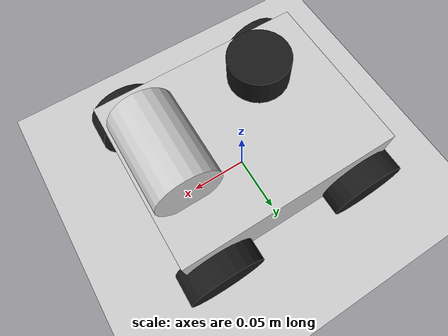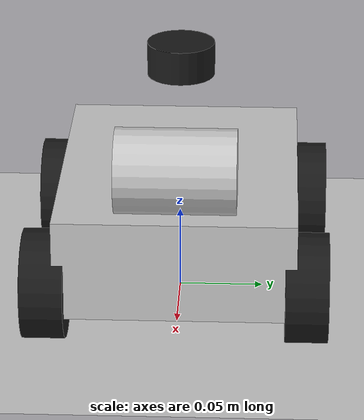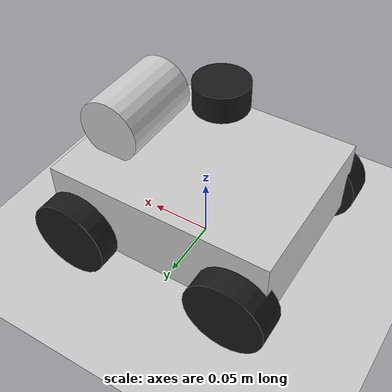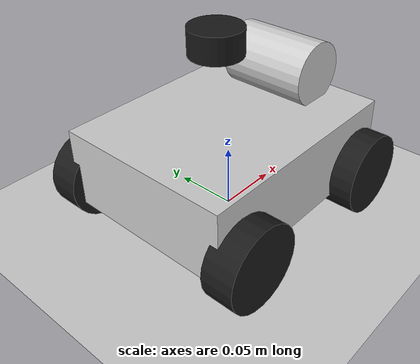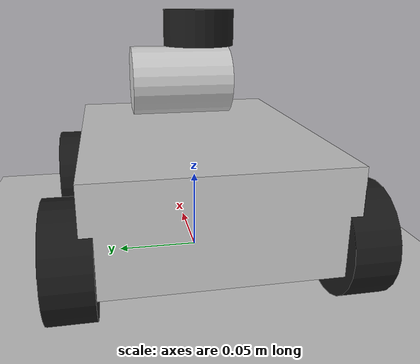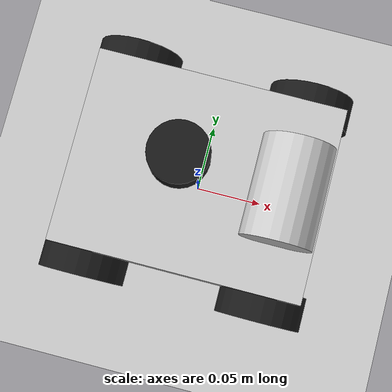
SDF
<?xml version="1.0" ?>
<sdf version="1.6">
  <world name="pioneer3_world">
    <physics name="1ms" type="ignored">
      <max_step_size>0.004</max_step_size>
      <real_time_factor>1.0</real_time_factor>
    </physics>
    <plugin
      filename="gz-sim-physics-system"
      name="gz::sim::systems::Physics">
    </plugin>
    <plugin
      filename="gz-sim-user-commands-system"
      name="gz::sim::systems::UserCommands">
    </plugin>
    <plugin
      filename="gz-sim-scene-broadcaster-system"
      name="gz::sim::systems::SceneBroadcaster">
    </plugin>
    <plugin
      filename="gz-sim-contact-system"
      name="gz::sim::systems::Contact">
    </plugin>

    <light type="directional" name="sun">
      <cast_shadows>true</cast_shadows>
      <pose>0 0 10 0 0 0</pose>
      <diffuse>0.8 0.8 0.8 1</diffuse>
      <specular>0.2 0.2 0.2 1</specular>
      <attenuation>
        <range>1000</range>
        <constant>0.9</constant>
        <linear>0.01</linear>
        <quadratic>0.001</quadratic>
      </attenuation>
      <direction>-0.5 0.1 -0.9</direction>
    </light>

    <model name="ground_plane">
      <static>true</static>
      <link name="link">
        <collision name="collision">
          <geometry>
            <plane>
              <normal>0 0 1</normal>
              <size>100 100</size>
            </plane>
          </geometry>
        </collision>
        <visual name="visual">
          <geometry>
            <plane>
              <normal>0 0 1</normal>
              <size>100 100</size>
            </plane>
          </geometry>
          <material>
            <ambient>0.8 0.8 0.8 1</ambient>
            <diffuse>0.8 0.8 0.8 1</diffuse>
            <specular>0.8 0.8 0.8 1</specular>
          </material>
        </visual>
      </link>
    </model>

    <include>
      <uri>mentorpi.sdf</uri>
      <pose>0 0 0 0 0 0</pose>
    </include>

  </world>
</sdf>

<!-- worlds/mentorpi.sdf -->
<sdf version='1.11'>
  <model name='mentorpi'>
    <link name='base_footprint'>
      <inertial>
        <pose>0.0040700634005763686 0 0.06836528530259367 0 0 0</pose>
        <mass>1.7350000000000001</mass>
        <inertia>
          <ixx>0.01103253207617378</ixx>
          <ixy>0</ixy>
          <ixz>-0.0001838035952386166</ixz>
          <iyy>0.0113644695414268</iyy>
          <iyz>0</iyz>
          <izz>0.020727897465253029</izz>
        </inertia>
      </inertial>
      <collision name='base_footprint_fixed_joint_lump__base_link_collision'>
        <pose>0 0 0.070407999999999998 0 0 0</pose>
        <geometry>
          <box>
            <size>0.17999999999999999 0.14000000000000001 0.059999999999999998</size>
          </box>
        </geometry>
        <surface>
          <contact>
            <ode />
          </contact>
          <friction>
            <ode />
          </friction>
        </surface>
      </collision>
      <collision name='base_footprint_fixed_joint_lump__camera_link_collision_1'>
        <pose>0.061376 0 0.101562 0 0 0</pose>
        <geometry>
          <box>
            <size>0.029999999999999999 0.080000000000000002 0.025000000000000001</size>
          </box>
        </geometry>
        <surface>
          <contact>
            <ode />
          </contact>
          <friction>
            <ode />
          </friction>
        </surface>
      </collision>
      <collision name='base_footprint_fixed_joint_lump__laser_collision_2'>
        <pose>-0.012241999999999999 -0.017999999999999999 0.14290900000000001 0 0 0</pose>
        <geometry>
          <cylinder>
            <length>0.040000000000000001</length>
            <radius>0.035000000000000003</radius>
          </cylinder>
        </geometry>
        <surface>
          <contact>
            <ode />
          </contact>
          <friction>
            <ode />
          </friction>
        </surface>
      </collision>
      <visual name='base_footprint_fixed_joint_lump__base_link_visual'>
        <pose>0 0 0.050408000000000001 0 0 0</pose>
        <geometry>
          <box>
            <size>0.18 0.14 0.06</size>
          </box>
        </geometry>
        <material>
          <ambient>0.8 0.8 0.8 1</ambient>
          <diffuse>0.8 0.8 0.8 1</diffuse>
        </material>
      </visual>
      <visual name='base_footprint_fixed_joint_lump__camera_link_visual_1'>
        <pose>0.061376 0 0.101562 1.5707963267948959 0 0</pose>
        <geometry>
          <cylinder>
            <length>0.07</length>
            <radius>0.025</radius>
          </cylinder>
        </geometry>
        <material>
          <ambient>0.8 0.8 0.8 1</ambient>
          <diffuse>0.8 0.8 0.8 1</diffuse>
        </material>
      </visual>
      <visual name='base_footprint_fixed_joint_lump__laser_visual_2'>
        <pose>-0.012241999999999999 0 0.14290900000000001 0 0 0</pose>
        <geometry>
          <cylinder>
            <length>0.02</length>
            <radius>0.02</radius>
          </cylinder>
        </geometry>
        <material>
          <ambient>0.1 0.1 0.1 1</ambient>
        </material>
      </visual>

      <sensor name='imu_sensor' type='imu'>
        <topic>imu/data</topic>
        <update_rate>50</update_rate>
        <always_on>true</always_on>
        <pose>0 0 0.05 0 0 0</pose>
      </sensor>

      <sensor name='camera' type='camera'>
        <topic>camera</topic>
        <update_rate>10</update_rate>
        <always_on>true</always_on>
        <visualize>true</visualize>
        <camera>
          <optical_frame_id>camera_depth_link</optical_frame_id>
          <horizontal_fov>1.5</horizontal_fov>
          <image>
            <width>320</width>
            <height>240</height>
            <format>R8G8B8</format>
          </image>
          <clip>
            <near>0.02</near>
            <far>100</far>
          </clip>
        </camera>
        <pose>0.10 0 0.12 0 0 0</pose>
      </sensor>

      <sensor name='gpu_lidar' type='gpu_lidar'>
        <topic>scan</topic>
        <update_rate>10</update_rate>
        <always_on>true</always_on>
        <visualize>false</visualize>
        <lidar>
          <scan>
            <horizontal>
              <samples>360</samples>
              <resolution>1</resolution>
              <min_angle>0.0</min_angle>
              <max_angle>6.28318</max_angle>
            </horizontal>
          </scan>
          <range>
            <min>0.08</min>
            <max>12</max>
            <resolution>0.01</resolution>
          </range>
        </lidar>
        <pose>-0.012 0 0.143 0 0 0</pose>
        <gz_frame_id>laser</gz_frame_id>
      </sensor>
    </link>
    <joint name='front_left_wheel_joint' type='revolute'>
      <pose relative_to='base_footprint'>0.067000000000000004 0.075910000000000005
        0.032000000000000001 0 0 0</pose>
      <parent>base_footprint</parent>
      <child>front_left_wheel_link</child>
      <axis>
        <xyz>0 1 0</xyz>
        <limit>
          <lower>-inf</lower>
          <upper>inf</upper>
        </limit>
        <dynamics>
          <spring_reference>0</spring_reference>
          <spring_stiffness>0</spring_stiffness>
        </dynamics>
      </axis>
    </joint>
    <link name='front_left_wheel_link'>
      <pose relative_to='front_left_wheel_joint'>0 0 0 0 0 0</pose>
      <inertial>
        <pose>0 0 0 0 0 0</pose>
        <mass>0.10000000000000001</mass>
        <inertia>
          <ixx>4.0960000000000008e-05</ixx>
          <ixy>0</ixy>
          <ixz>0</ixz>
          <iyy>4.0960000000000008e-05</iyy>
          <iyz>0</iyz>
          <izz>4.0960000000000008e-05</izz>
        </inertia>
      </inertial>
      <collision name='front_left_wheel_link_collision'>
        <pose>0 0 0 1.5707963267948959 0 0</pose>
        <geometry>
          <cylinder>
            <length>0.025000000000000001</length>
            <radius>0.032000000000000001</radius>
          </cylinder>
        </geometry>
        <surface>
          <friction>
            <ode>
              <mu>1.5</mu>
              <mu2>0.69999999999999996</mu2>
              <fdir1 gz:expressed_in='base_footprint'>1 -1 0</fdir1>
              <kp>200000.0</kp>
              <kd>5000.0</kd>
            </ode>
          </friction>
          <contact>
            <ode />
          </contact>
        </surface>
      </collision>
      <visual name='front_left_wheel_link_visual'>
        <pose>0 0 0 1.5707963267948959 0 0</pose>
        <geometry>
          <cylinder>
            <length>0.025</length>
            <radius>0.032</radius>
          </cylinder>
        </geometry>
        <material>
          <ambient>0.1 0.1 0.1 1</ambient>
        </material>
      </visual>
    </link>
    <joint name='front_right_wheel_joint' type='revolute'>
      <pose relative_to='base_footprint'>0.067000000000000004 -0.075910000000000005
        0.032000000000000001 0 0 0</pose>
      <parent>base_footprint</parent>
      <child>front_right_wheel_link</child>
      <axis>
        <xyz>0 1 0</xyz>
        <limit>
          <lower>-inf</lower>
          <upper>inf</upper>
        </limit>
        <dynamics>
          <spring_reference>0</spring_reference>
          <spring_stiffness>0</spring_stiffness>
        </dynamics>
      </axis>
    </joint>
    <link name='front_right_wheel_link'>
      <pose relative_to='front_right_wheel_joint'>0 0 0 0 0 0</pose>
      <inertial>
        <pose>0 0 0 0 0 0</pose>
        <mass>0.10000000000000001</mass>
        <inertia>
          <ixx>4.0960000000000008e-05</ixx>
          <ixy>0</ixy>
          <ixz>0</ixz>
          <iyy>4.0960000000000008e-05</iyy>
          <iyz>0</iyz>
          <izz>4.0960000000000008e-05</izz>
        </inertia>
      </inertial>
      <collision name='front_right_wheel_link_collision'>
        <pose>0 0 0 1.5707963267948959 0 0</pose>
        <geometry>
          <cylinder>
            <length>0.025000000000000001</length>
            <radius>0.032000000000000001</radius>
          </cylinder>
        </geometry>
        <surface>
          <friction>
            <ode>
              <mu>1.5</mu>
              <mu2>0.69999999999999996</mu2>
              <fdir1 gz:expressed_in='base_footprint'>1 1 0</fdir1>
              <kp>200000.0</kp>
              <kd>5000.0</kd>
            </ode>
          </friction>
          <contact>
            <ode />
          </contact>
        </surface>
      </collision>
      <visual name='front_right_wheel_link_visual'>
        <pose>0 0 0 1.5707963267948959 0 0</pose>
        <geometry>
          <cylinder>
            <length>0.025</length>
            <radius>0.032</radius>
          </cylinder>
        </geometry>
        <material>
          <ambient>0.1 0.1 0.1 1</ambient>
        </material>
      </visual>
    </link>
    <joint name='rear_left_wheel_joint' type='revolute'>
      <pose relative_to='base_footprint'>-0.067000000000000004 0.075910000000000005
        0.032000000000000001 0 0 0</pose>
      <parent>base_footprint</parent>
      <child>rear_left_wheel_link</child>
      <axis>
        <xyz>0 1 0</xyz>
        <limit>
          <lower>-inf</lower>
          <upper>inf</upper>
        </limit>
        <dynamics>
          <spring_reference>0</spring_reference>
          <spring_stiffness>0</spring_stiffness>
        </dynamics>
      </axis>
    </joint>
    <link name='rear_left_wheel_link'>
      <pose relative_to='rear_left_wheel_joint'>0 0 0 0 0 0</pose>
      <inertial>
        <pose>0 0 0 0 0 0</pose>
        <mass>0.10000000000000001</mass>
        <inertia>
          <ixx>4.0960000000000008e-05</ixx>
          <ixy>0</ixy>
          <ixz>0</ixz>
          <iyy>4.0960000000000008e-05</iyy>
          <iyz>0</iyz>
          <izz>4.0960000000000008e-05</izz>
        </inertia>
      </inertial>
      <collision name='rear_left_wheel_link_collision'>
        <pose>0 0 0 1.5707963267948959 0 0</pose>
        <geometry>
          <cylinder>
            <length>0.025000000000000001</length>
            <radius>0.032000000000000001</radius>
          </cylinder>
        </geometry>
        <surface>
          <friction>
            <ode>
              <mu>1.5</mu>
              <mu2>0.69999999999999996</mu2>
              <fdir1 gz:expressed_in='base_footprint'>1 1 0</fdir1>
              <kp>200000.0</kp>
              <kd>5000.0</kd>
            </ode>
          </friction>
          <contact>
            <ode />
          </contact>
        </surface>
      </collision>
      <visual name='rear_left_wheel_link_visual'>
        <pose>0 0 0 1.5707963267948959 0 0</pose>
        <geometry>
          <cylinder>
            <length>0.025</length>
            <radius>0.032</radius>
          </cylinder>
        </geometry>
        <material>
          <ambient>0.1 0.1 0.1 1</ambient>
        </material>
      </visual>
    </link>
    <joint name='rear_right_wheel_joint' type='revolute'>
      <pose relative_to='base_footprint'>-0.067000000000000004 -0.075910000000000005
        0.032000000000000001 0 0 0</pose>
      <parent>base_footprint</parent>
      <child>rear_right_wheel_link</child>
      <axis>
        <xyz>0 1 0</xyz>
        <limit>
          <lower>-inf</lower>
          <upper>inf</upper>
        </limit>
        <dynamics>
          <spring_reference>0</spring_reference>
          <spring_stiffness>0</spring_stiffness>
        </dynamics>
      </axis>
    </joint>
    <link name='rear_right_wheel_link'>
      <pose relative_to='rear_right_wheel_joint'>0 0 0 0 0 0</pose>
      <inertial>
        <pose>0 0 0 0 0 0</pose>
        <mass>0.10000000000000001</mass>
        <inertia>
          <ixx>4.0960000000000008e-05</ixx>
          <ixy>0</ixy>
          <ixz>0</ixz>
          <iyy>4.0960000000000008e-05</iyy>
          <iyz>0</iyz>
          <izz>4.0960000000000008e-05</izz>
        </inertia>
      </inertial>
      <collision name='rear_right_wheel_link_collision'>
        <pose>0 0 0 1.5707963267948959 0 0</pose>
        <geometry>
          <cylinder>
            <length>0.025000000000000001</length>
            <radius>0.032000000000000001</radius>
          </cylinder>
        </geometry>
        <surface>
          <friction>
            <ode>
              <mu>1.5</mu>
              <mu2>0.69999999999999996</mu2>
              <fdir1 gz:expressed_in='base_footprint'>1 -1 0</fdir1>
              <kp>200000.0</kp>
              <kd>5000.0</kd>
            </ode>
          </friction>
          <contact>
            <ode />
          </contact>
        </surface>
      </collision>
      <visual name='rear_right_wheel_link_visual'>
        <pose>0 0 0 1.5707963267948959 0 0</pose>
        <geometry>
          <cylinder>
            <length>0.025</length>
            <radius>0.032</radius>
          </cylinder>
        </geometry>
        <material>
          <ambient>0.1 0.1 0.1 1</ambient>
        </material>
      </visual>
    </link>
    <plugin name='gz::sim::systems::Sensors' filename='gz-sim-sensors-system'>
      <render_engine>ogre2</render_engine>
    </plugin>
    <plugin name='gz::sim::systems::Imu' filename='gz-sim-imu-system' />
    <plugin name='gz::sim::systems::MecanumDrive' filename='gz-sim-mecanum-drive-system'>
      <topic>cmd_vel</topic>
      <odom_frame>odom</odom_frame>
      <robot_base_frame>base_footprint</robot_base_frame>
      <child_frame_id>base_footprint</child_frame_id>
      <odom_topic>odom/unfiltered</odom_topic>

      <tf_topic></tf_topic>
      <front_left_joint>front_left_wheel_joint</front_left_joint>
      <front_right_joint>front_right_wheel_joint</front_right_joint>
      <back_left_joint>rear_left_wheel_joint</back_left_joint>
      <back_right_joint>rear_right_wheel_joint</back_right_joint>
      <wheel_separation>0.15182</wheel_separation>
      <wheelbase>0.134</wheelbase>
      <wheel_radius>0.032</wheel_radius>
      <odom_publish_frequency>50</odom_publish_frequency>
    </plugin>
    <plugin name='gz::sim::systems::OdometryPublisher' filename='gz-sim-odometry-publisher-system'>
      <odom_topic>odom/unfiltered</odom_topic>
      <odom_frame>odom</odom_frame>
      <robot_base_frame>base_footprint</robot_base_frame>
      <publish_tf>true</publish_tf>
      <tf_topic>/model/mentorpi/tf</tf_topic>
      <odom_publish_frequency>50</odom_publish_frequency>
      <xyz_offset>0 0 0</xyz_offset>
      <rpy_offset>0 0 0</rpy_offset>
    </plugin>
    <plugin name='gz::sim::systems::JointStatePublisher'
      filename='gz-sim-joint-state-publisher-system'>
      <topic>joint_states</topic>
      <update_rate>100</update_rate>
      <joint_name>front_left_wheel_joint</joint_name>
      <joint_name>front_right_wheel_joint</joint_name>
      <joint_name>rear_left_wheel_joint</joint_name>
      <joint_name>rear_right_wheel_joint</joint_name>
    </plugin>
    <frame name='camera_depth_joint' attached_to='camera_link'>
      <pose>0 0 0 0 0 0</pose>
    </frame>
    <frame name='camera_depth_link' attached_to='camera_depth_joint'>
      <pose>0 0 0 0 0 0</pose>
    </frame>
    <frame name='camera_to_base_link' attached_to='base_link'>
      <pose>0.061376 0 0.051153999999999998 0 0 0</pose>
    </frame>
    <frame name='camera_link' attached_to='camera_to_base_link'>
      <pose>0 0 0 0 0 0</pose>
    </frame>
    <frame name='imu_to_base_link' attached_to='base_link'>
      <pose>0 0 0 0 0 0</pose>
    </frame>
    <frame name='imu_link' attached_to='imu_to_base_link'>
      <pose>0 0 0 0 0 0</pose>
    </frame>
    <frame name='laser_to_base_link' attached_to='base_link'>
      <pose>-0.012241999999999999 0 0.092501 0 0 0</pose>
    </frame>
    <frame name='laser' attached_to='laser_to_base_link'>
      <pose>0 0 0 0 0 0</pose>
    </frame>
    <frame name='base_to_footprint' attached_to='base_footprint'>
      <pose>0 0 0.050408000000000001 0 0 0</pose>
    </frame>
    <frame name='base_link' attached_to='base_to_footprint'>
      <pose>0 0 0 0 0 0</pose>
    </frame>
  </model>
</sdf>
